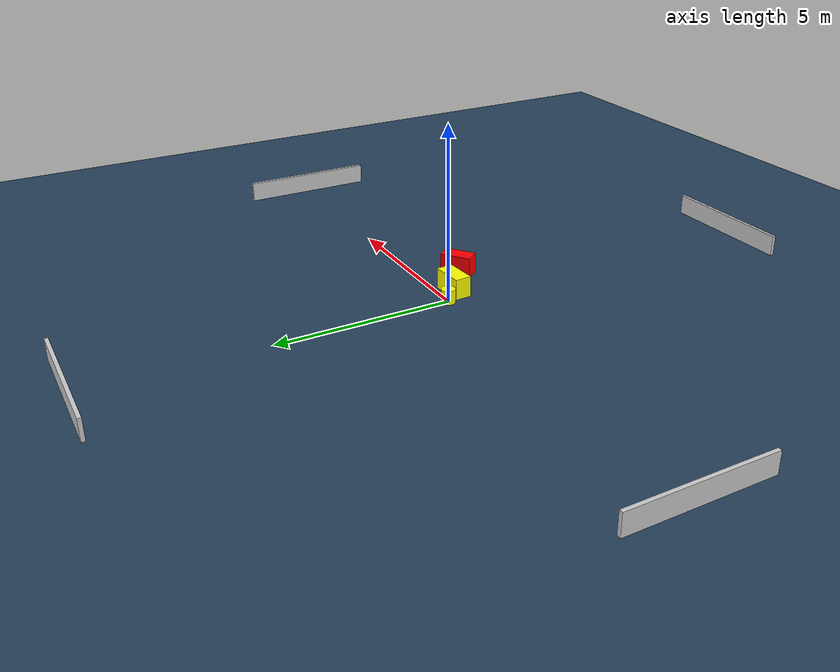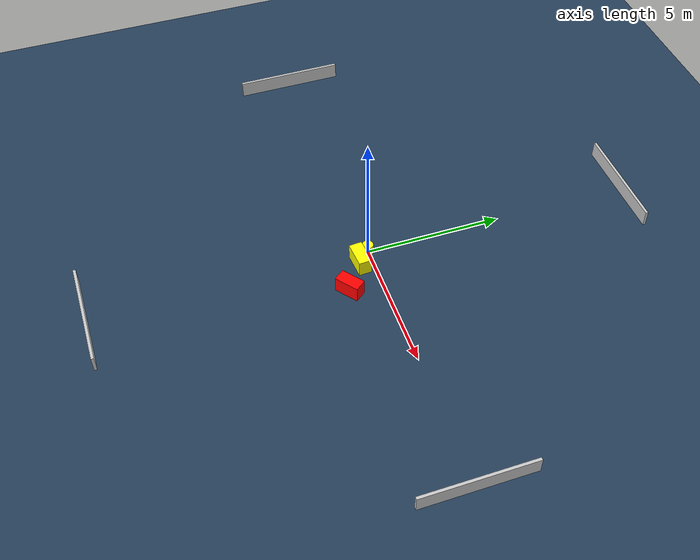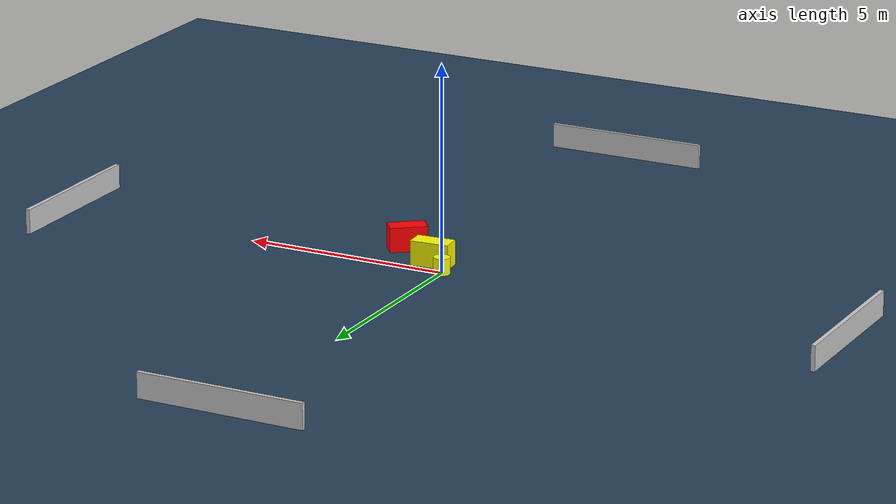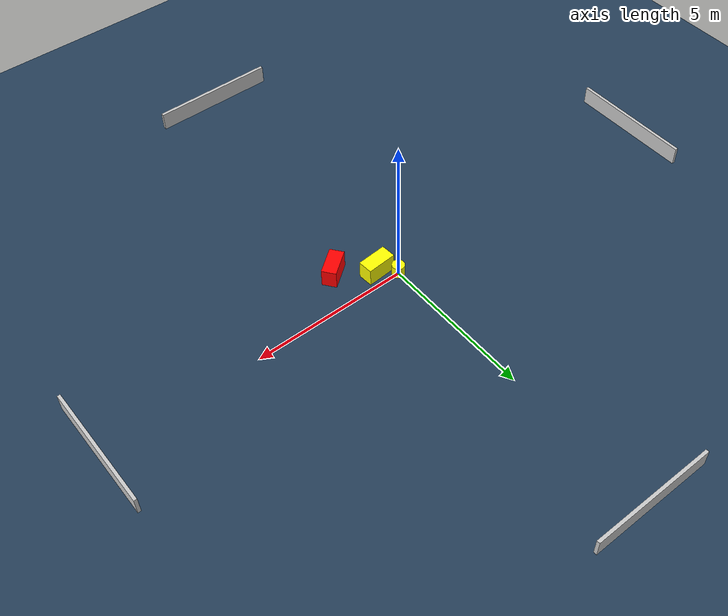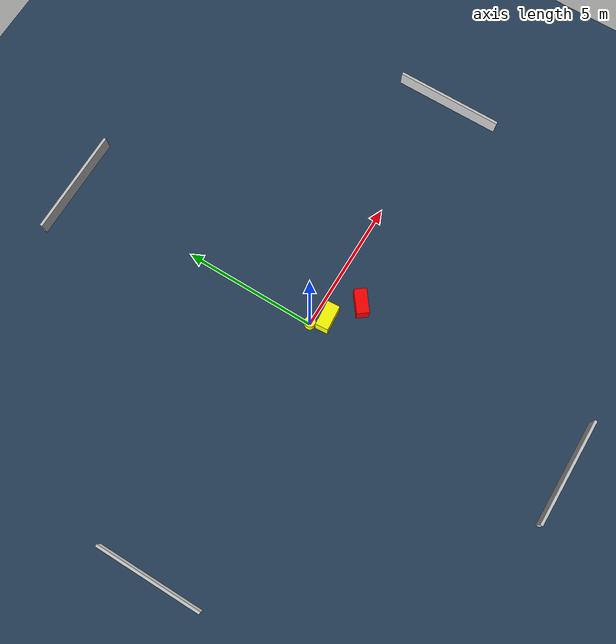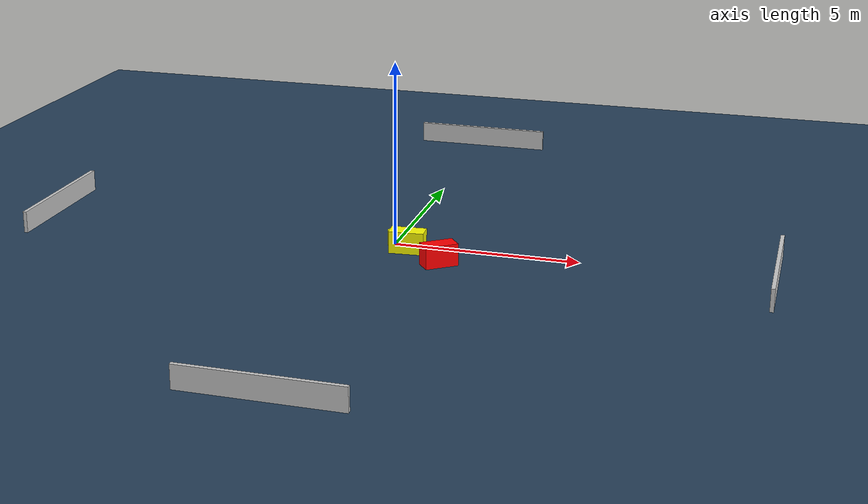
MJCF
<?xml version="1.0" ?>
<mujoco model="generated_environment">
  <option timestep="0.01" integrator="RK4" cone="elliptic"/>
  <default>
    <geom density="1"/>
  </default>
  <asset>
    <texture builtin="gradient" height="3072" name="skybox" rgb1="0.3 0.5 0.7" rgb2="0 0 0" type="skybox" width="512"/>
    <texture builtin="checker" height="300" name="groundplane" rgb1="0.2 0.3 0.4" rgb2="0.1 0.2 0.3" type="2d" width="300"/>
    <material name="groundplane" reflectance="0.2" texrepeat="5 5" texture="groundplane"/>
  </asset>
  <worldbody>
    <light dir="0 0 -1" directional="true" pos="0 0 1.5"/>
    <geom condim="3" friction="0.5 0.005 0.001" material="groundplane" name="floor" pos="0 0 0" size="0 0 0.05" type="plane"/>
    <body name="walls">
      <geom name="wall_1" condim="4" pos="-10.0 0.0 0.3" rgba="0.800000011920929 0.800000011920929 0.800000011920929 1.0" size="0.05 2.0 0.3" type="box"/>
      <geom name="wall_2" condim="4" pos="10.0 0.0 0.3" rgba="0.800000011920929 0.800000011920929 0.800000011920929 1.0" size="0.05 2.0 0.3" type="box"/>
      <geom name="wall_3" condim="4" pos="0.0 -10.0 0.3" rgba="0.800000011920929 0.800000011920929 0.800000011920929 1.0" size="2.0 0.05 0.3" type="box"/>
      <geom name="wall_4" condim="4" pos="0.0 10.0 0.3" rgba="0.800000011920929 0.800000011920929 0.800000011920929 1.0" size="2.0 0.05 0.3" type="box"/>
    </body>
    <body name="robot">
      <joint name="joint_x" type="slide" pos="0 0 0" axis="1 0 0"/>
      <joint name="joint_y" type="slide" pos="0 0 0" axis="0 1 0"/>
      <geom name="robot" type="cylinder" pos="0.0 0.0 0.2" size="0.2 0.2 0.0" mass="5.0" friction="1.0 0.005 0.0001" condim="4" rgba="1.0 1.0 0.0 1.0"/>
    </body>
    <body name="obstacle_1_movable">
      <geom name="obstacle_1_movable" condim="4" pos="0.46574046178272227 -0.4351513638938545 0.3" euler="0 0 4.087524023159661" friction="0.0 0.005 0.001" rgba="1.0 1.0 0.0 1.0" size="0.47095509256471985 0.23728478832341454 0.3" type="box" mass="0.1"/>
      <joint type="free"/>
    </body>
    <body name="obstacle_2_static">
      <geom name="obstacle_2_static" condim="4" pos="1.5266676072187422 -1.1784679889654255 0.3" euler="0 0 217.20951069468023" friction="0.0 0.005 0.001" rgba="1.0 0.0 0.0 1.0" size="0.4505759297270868 0.22885073555348562 0.3" type="box"/>
    </body>
  </worldbody>
  <actuator>
    <motor name="actuator_x" joint="joint_x" gear="1" ctrlrange="-1 1"/>
    <motor name="actuator_y" joint="joint_y" gear="1" ctrlrange="-1 1"/>
  </actuator>
</mujoco>
